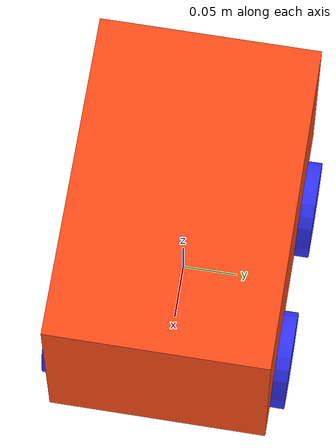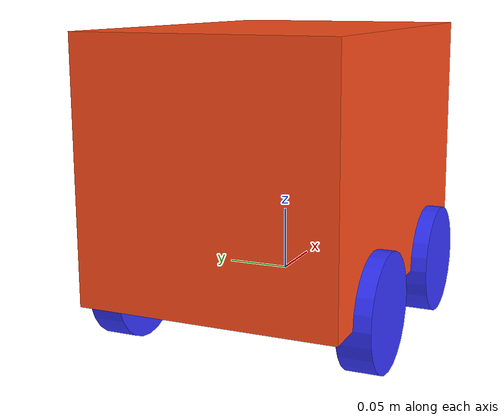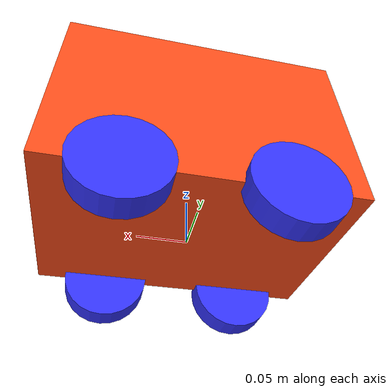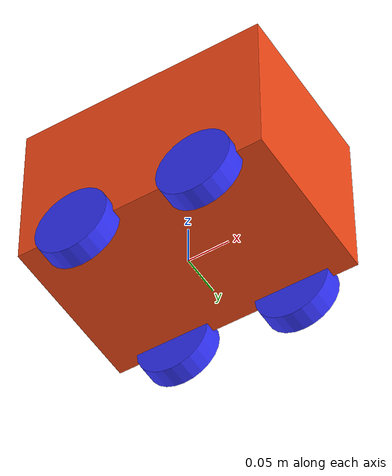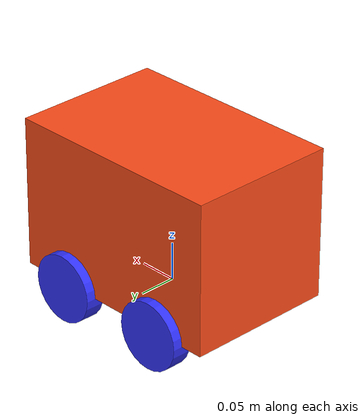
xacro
<?xml version="1.0"?>
<robot xmlns:xacro="http://www.ros.org/wiki/xacro" >

    <xacro:include filename="Inertial_macros.xacro"/>
    <xacro:property name="chassis_length" value="0.3"/>
    <xacro:property name="chassis_width" value="0.2"/>
    <xacro:property name="chassis_height" value="0.2"/>
    <xacro:property name="chassis_mass" value="1.0"/>
    <xacro:property name="wheel_radius" value="0.045"/>
    <xacro:property name="wheel_thickness" value="0.026"/>
    <xacro:property name="wheel_mass" value="0.05"/>
    <xacro:property name="wheel_offset_x" value="0.075"/>
    <xacro:property name="wheel_offset_y" value="0.1"/>
    <xacro:property name="wheel_offset_z" value="0.01"/>

    <material name="white">
        <color rgba="1 1 1 1" />
    </material>

    <material name="orange">
        <color rgba="1 0.3 0.1 1"/>
    </material>

    <material name="blue">
        <color rgba="0.2 0.2 1 1"/>
    </material>

    <material name="black">
        <color rgba="0 0 0 1"/>
    </material>

    <material name="red">
        <color rgba="1 0 0 1"/>
    </material>

 <!-- BASE LINK -->

    <link name="base_link">

    </link>

 <!-- CHASSIS LINK -->

    <joint name="chassis_joint" type="fixed">
        <parent link="base_link"/>
        <child link="chassis"/>
        <origin xyz="-0.15 0 0"/>
    </joint>

    <link name="chassis">
        <visual>
            <origin xyz="${chassis_length/2} 0 ${chassis_height/2}"/>
            <geometry>
                <box size="${chassis_length} ${chassis_width} ${chassis_height}"/>
            </geometry>
            <material name="orange"/>
        </visual>
        <collision>
            <origin xyz="${chassis_length/2} 0 ${chassis_height/2}"/>
            <geometry>
                <box size="${chassis_length} ${chassis_width} ${chassis_height}"/>
            </geometry>
        </collision>
        <xacro:inertial_box mass="0.5" x="${chassis_length}" y="${chassis_width}" z="${chassis_height}">
            <origin xyz="${chassis_length/2} 0 ${chassis_height/2}" rpy="0 0 0"/>
        </xacro:inertial_box>
    </link>

    <gazebo reference="chassis">
        <material>Gazebo/Orange</material>
    </gazebo>

    <!-- BASE FOOTPRINT -->
    <joint name="base_footprint_joint" type="fixed">
        <parent link="base_link"/>
        <child link="base_footprint"/>
        <origin xyz="0 0 0" rpy="0 0 0" />
    </joint>

    <link name="base_footprint">
    </link>

   <!-- LEFT WHEEL LINK -->

    <joint name="left_F_wheel_joint" type="continuous">
        <parent link="base_link"/>
        <child link="left_Fwheel"/>
        <origin xyz="${wheel_offset_x} ${wheel_offset_y} 0" rpy="-${pi/2} 0 0" />
        <axis xyz="0 0 1"/>
    </joint>

    <link name="left_Fwheel">
        <visual>
            <geometry>
                <cylinder radius="${wheel_radius}" length="${wheel_thickness}"/>
            </geometry>
            <material name="blue"/>
        </visual>
        <collision>
            <geometry>
                <sphere radius="${wheel_radius}"/>
            </geometry>
        </collision>
                <xacro:inertial_cylinder mass="${wheel_mass}" length="${wheel_thickness}" radius="${wheel_radius}">
            <origin xyz="0 0 0" rpy="0 0 0"/>
        </xacro:inertial_cylinder>
    </link>

    <gazebo reference="left_Fwheel">
        <material>Gazebo/Blue</material>
    </gazebo>

    <joint name="left_B_wheel_joint" type="continuous">
        <parent link="base_link"/>
        <child link="left_Bwheel"/>
        <origin xyz="${-wheel_offset_x} ${wheel_offset_y} 0" rpy="-${pi/2} 0 0" />
        <axis xyz="0 0 1"/>
    </joint>

    <link name="left_Bwheel">
        <visual>
            <geometry>
                <cylinder radius="${wheel_radius}" length="${wheel_thickness}"/>
            </geometry>
            <material name="blue"/>
        </visual>
        <collision>
            <geometry>
                <sphere radius="${wheel_radius}"/>
            </geometry>
        </collision>
                <xacro:inertial_cylinder mass="${wheel_mass}" length="${wheel_thickness}" radius="${wheel_radius}">
            <origin xyz="0 0 0" rpy="0 0 0"/>
        </xacro:inertial_cylinder>
    </link>

    <gazebo reference="left_Bwheel">
        <material>Gazebo/Blue</material>
    </gazebo>

    <!-- RIGHT WHEEL LINK -->

    <joint name="right_F_wheel_joint" type="continuous">
        <parent link="base_link"/>
        <child link="right_Fwheel"/>
        <origin xyz="${wheel_offset_x} ${-wheel_offset_y} 0" rpy="${pi/2} 0 0" />
        <axis xyz="0 0 -1"/>
    </joint>

    <link name="right_Fwheel">
        <visual>
            <geometry>
                <cylinder radius="${wheel_radius}" length="${wheel_thickness}"/>
            </geometry>
            <material name="blue"/>
        </visual>
        <collision>
            <geometry>
                <sphere radius="${wheel_radius}"/>
            </geometry>
        </collision>
                <xacro:inertial_cylinder mass="${wheel_mass}" length="${wheel_thickness}" radius="${wheel_radius}">
            <origin xyz="0 0 0" rpy="0 0 0"/>
        </xacro:inertial_cylinder>
    </link>

    <gazebo reference="right_Fwheel">
        <material>Gazebo/Blue</material>
    </gazebo>

  <joint name="right_B_wheel_joint" type="continuous">
        <parent link="base_link"/>
        <child link="right_Bwheel"/>
        <origin xyz="${-wheel_offset_x} ${-wheel_offset_y} 0" rpy="${pi/2} 0 0" />
        <axis xyz="0 0 -1"/>
    </joint>

    <link name="right_Bwheel">
        <visual>
            <geometry>
                <cylinder radius="${wheel_radius}" length="${wheel_thickness}"/>
            </geometry>
            <material name="blue"/>
        </visual>
        <collision>
            <geometry>
                <sphere radius="${wheel_radius}"/>
            </geometry>
        </collision>
                <xacro:inertial_cylinder mass="${wheel_mass}" length="${wheel_thickness}" radius="${wheel_radius}">
            <origin xyz="0 0 0" rpy="0 0 0"/>
        </xacro:inertial_cylinder>
    </link>

    <gazebo reference="right_Bwheel">
        <material>Gazebo/Blue</material>
    </gazebo>

</robot>
